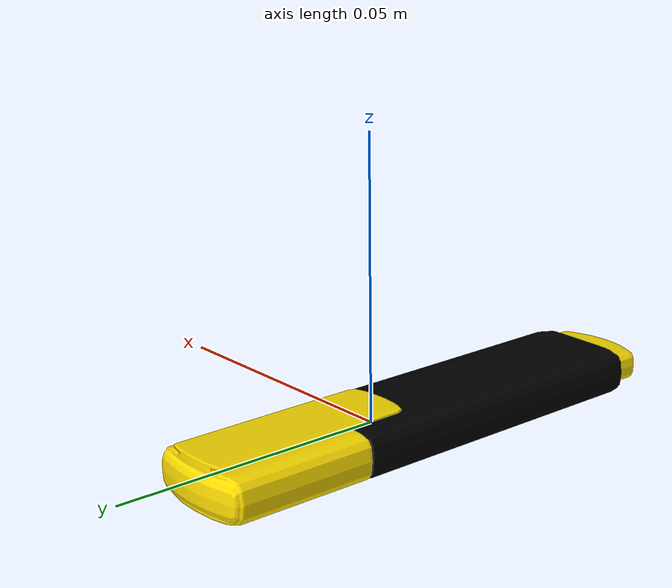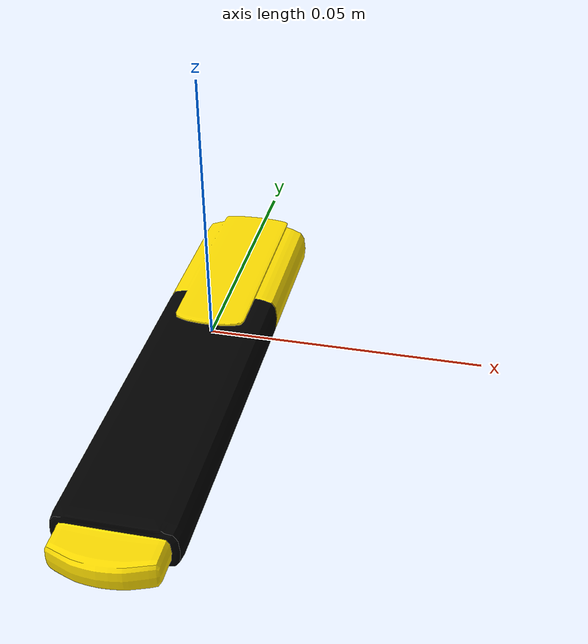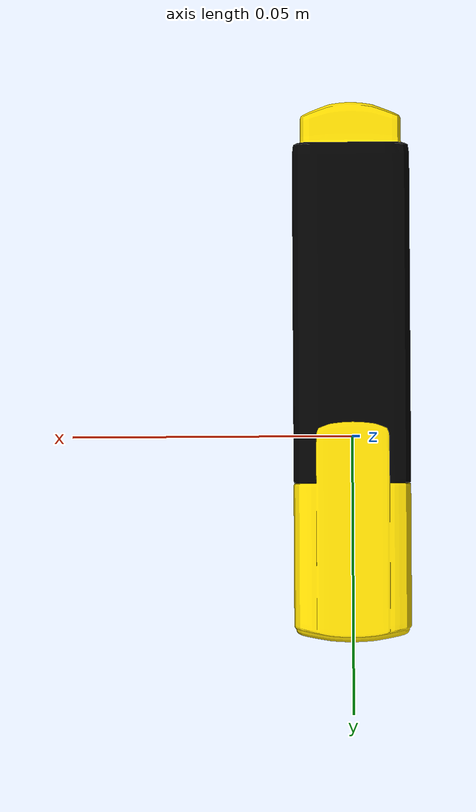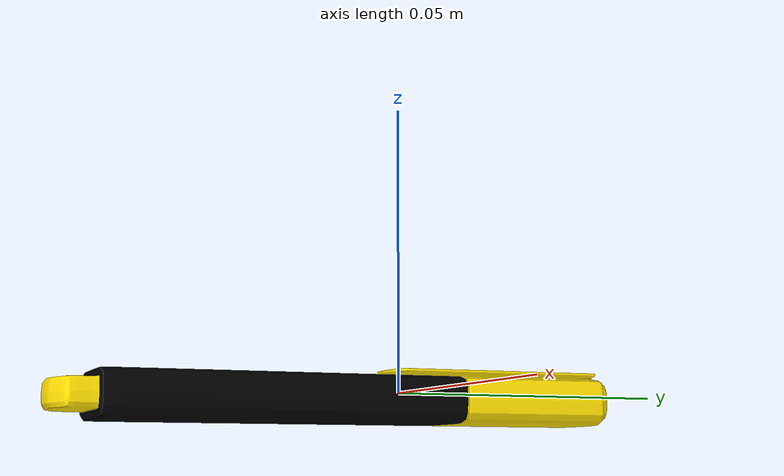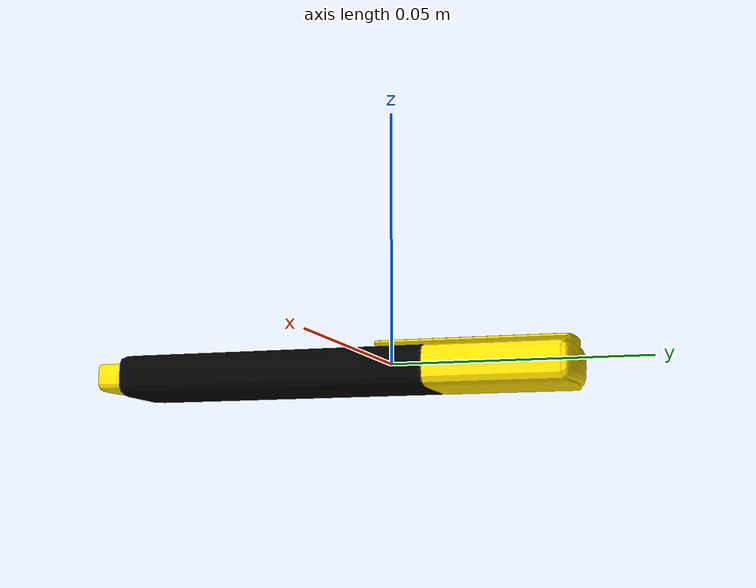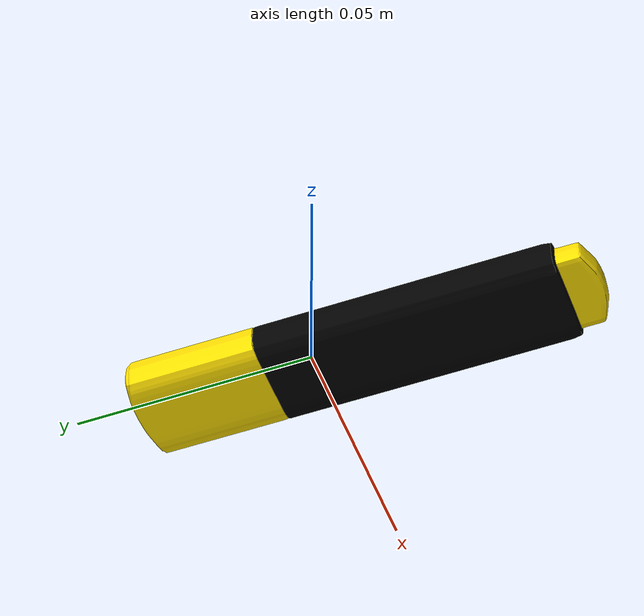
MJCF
<mujoco model="highlighter">
  <default>
    <default class="visual">
      <geom group="1" type="mesh" contype="0" conaffinity="0"/>
    </default>
    <default class="collision">
      <geom group="0" type="mesh" solref="0.01 1" solimp="0.99 0.99 0.01" margin="0.001" priority="1" friction="15 15 0.0001"/>
    </default>
  </default>
  <asset>
    <material name="PLASTIC_BLACK" specular="0.5" shininess="0.5" rgba="0.000000 0.000000 0.000000 1.000000"/>
    <material name="yelow_marker" specular="0.5" shininess="0.5" rgba="1.000000 0.875627 0.000000 1.000000"/>
    <mesh file="highlighter_0.obj" name="highlighter_0"/>
    <mesh file="highlighter_1.obj" name="highlighter_1"/>
    <mesh file="highlighter_collision_0.obj" name="highlighter_collision_0"/>
  </asset>
  <worldbody>
    <body name="base" pos="0 0 0">
      <body name="object">
      <geom mesh="highlighter_0" material="yelow_marker" class="visual"/>
      <geom mesh="highlighter_1" material="PLASTIC_BLACK" class="visual"/>
      <geom mesh="highlighter_collision_0" rgba="1 0 0 0" class="collision"/>
      </body>
    </body>
  </worldbody>
</mujoco>
